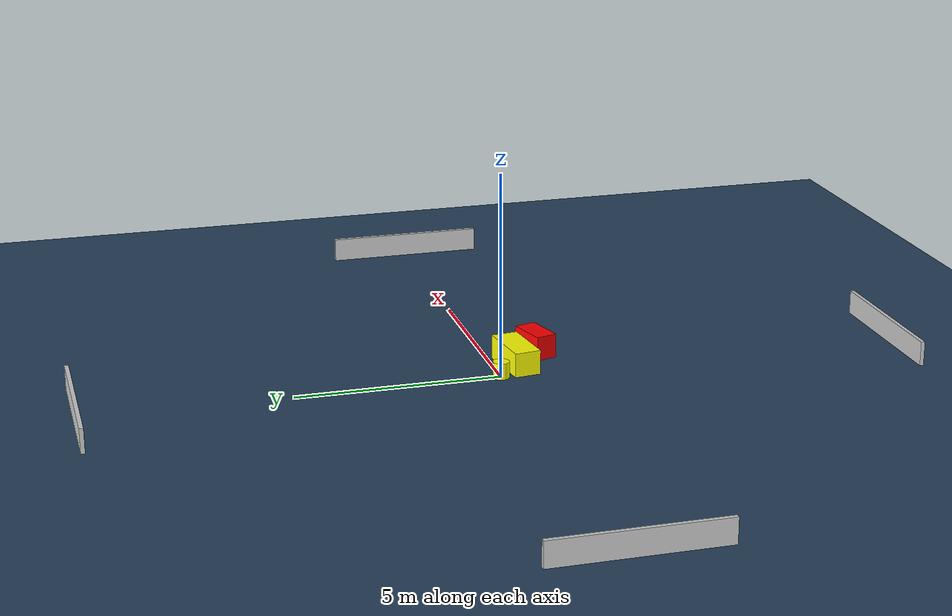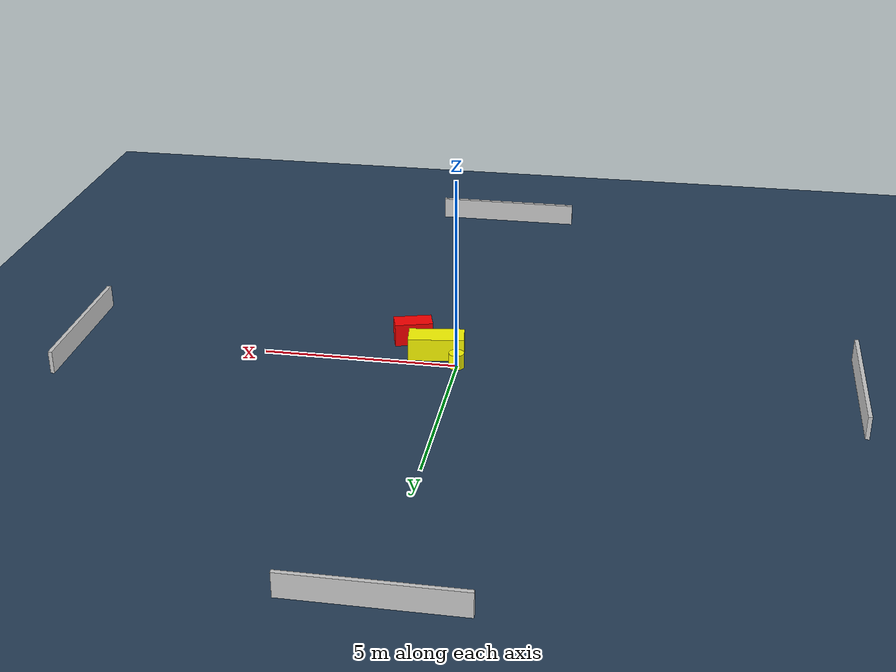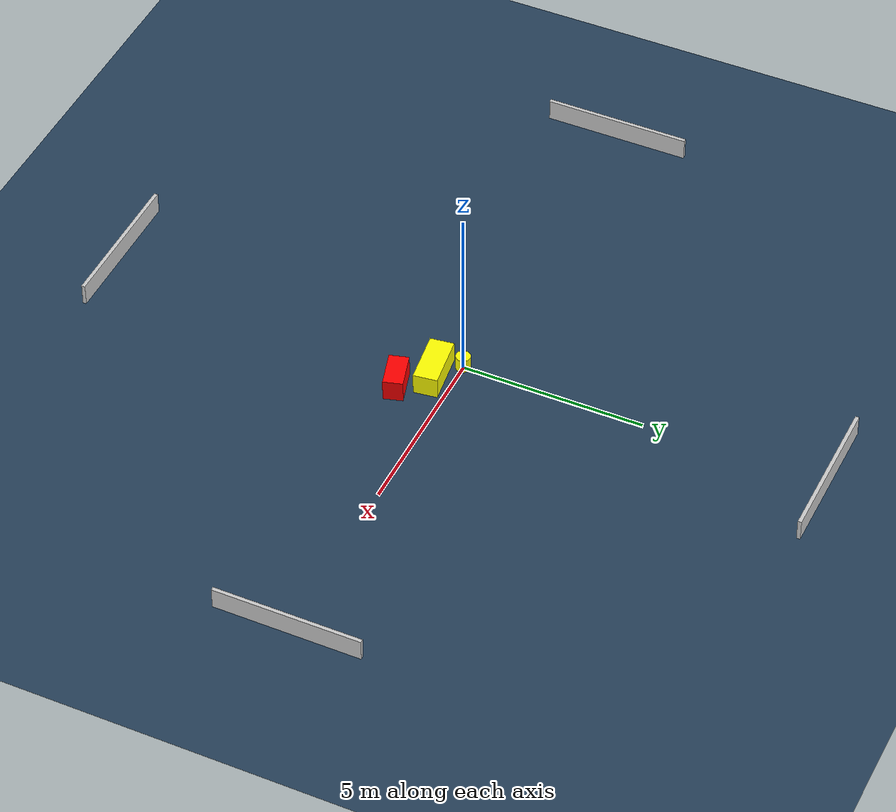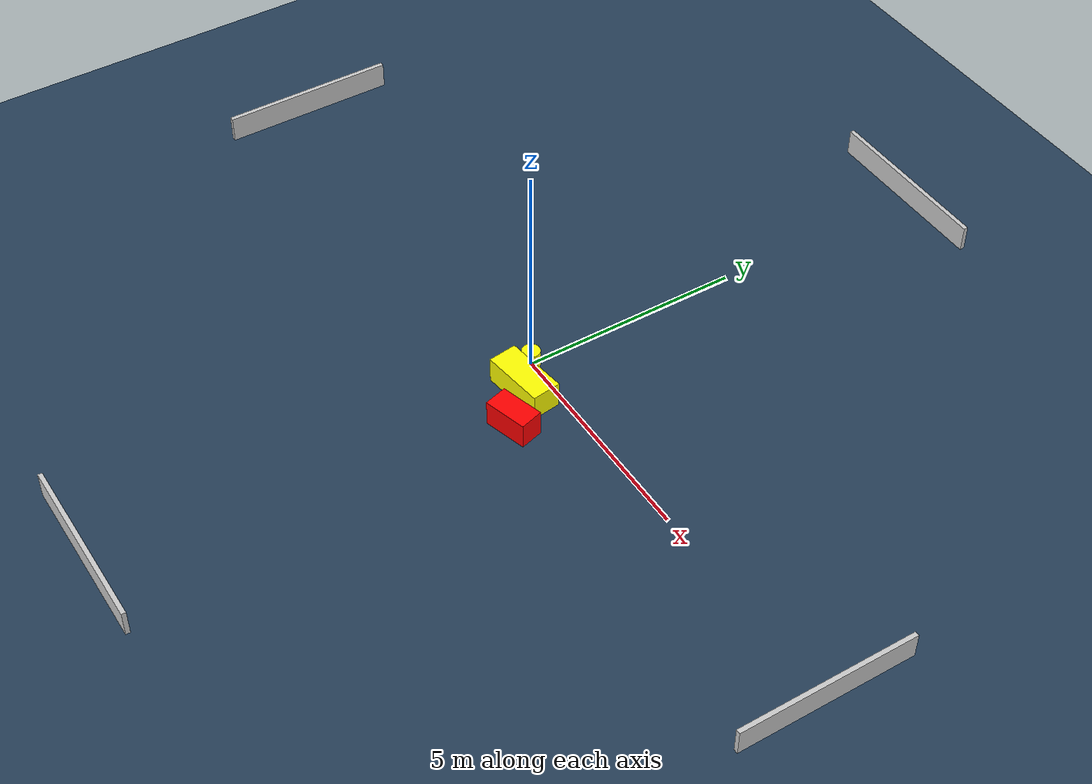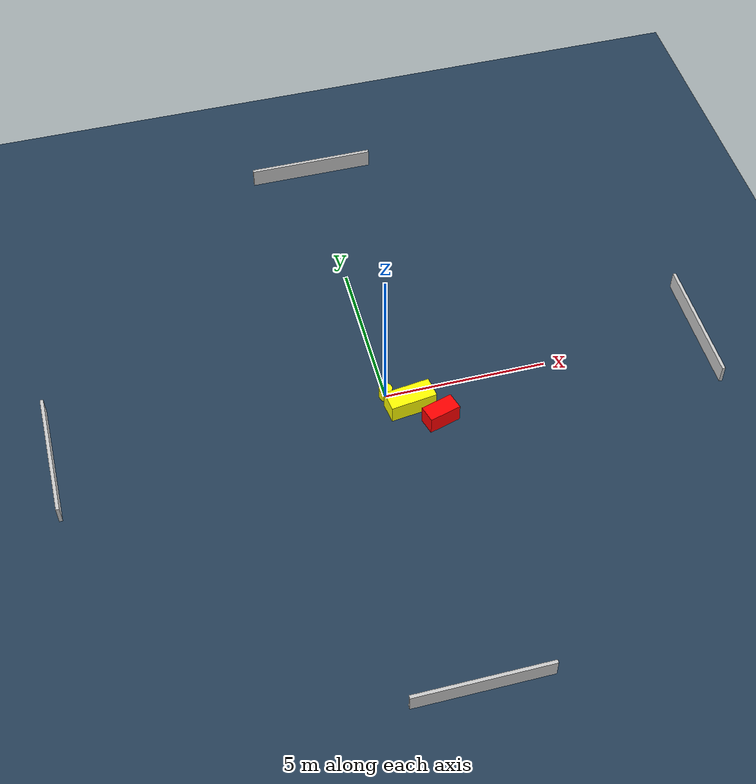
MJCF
<?xml version="1.0" ?>
<mujoco model="generated_environment">
  <option timestep="0.01" integrator="RK4" cone="elliptic"/>
  <default>
    <geom density="1"/>
  </default>
  <asset>
    <texture builtin="gradient" height="3072" name="skybox" rgb1="0.3 0.5 0.7" rgb2="0 0 0" type="skybox" width="512"/>
    <texture builtin="checker" height="300" name="groundplane" rgb1="0.2 0.3 0.4" rgb2="0.1 0.2 0.3" type="2d" width="300"/>
    <material name="groundplane" reflectance="0.2" texrepeat="5 5" texture="groundplane"/>
  </asset>
  <worldbody>
    <light dir="0 0 -1" directional="true" pos="0 0 1.5"/>
    <geom condim="3" friction="0.5 0.005 0.001" material="groundplane" name="floor" pos="0 0 0" size="0 0 0.05" type="plane"/>
    <body name="walls">
      <geom name="wall_1" condim="4" pos="-10.0 0.0 0.3" rgba="0.800000011920929 0.800000011920929 0.800000011920929 1.0" size="0.05 2.0 0.3" type="box"/>
      <geom name="wall_2" condim="4" pos="10.0 0.0 0.3" rgba="0.800000011920929 0.800000011920929 0.800000011920929 1.0" size="0.05 2.0 0.3" type="box"/>
      <geom name="wall_3" condim="4" pos="0.0 -10.0 0.3" rgba="0.800000011920929 0.800000011920929 0.800000011920929 1.0" size="2.0 0.05 0.3" type="box"/>
      <geom name="wall_4" condim="4" pos="0.0 10.0 0.3" rgba="0.800000011920929 0.800000011920929 0.800000011920929 1.0" size="2.0 0.05 0.3" type="box"/>
    </body>
    <body name="robot">
      <joint name="joint_x" type="slide" pos="0 0 0" axis="1 0 0"/>
      <joint name="joint_y" type="slide" pos="0 0 0" axis="0 1 0"/>
      <geom name="robot" type="cylinder" pos="0.0 0.0 0.2" size="0.2 0.2 0.0" mass="5.0" friction="1.0 0.005 0.0001" condim="4" rgba="1.0 1.0 0.0 1.0"/>
    </body>
    <body name="obstacle_1_movable">
      <geom name="obstacle_1_movable" condim="4" pos="0.6153757668185557 -0.5462038233682118 0.3" euler="0 0 97.48339397923438" friction="0.0 0.005 0.001" rgba="1.0 1.0 0.0 1.0" size="0.3253736046835225 0.7165527824223867 0.3" type="box" mass="0.1"/>
      <joint type="free"/>
    </body>
    <body name="obstacle_2_static">
      <geom name="obstacle_2_static" condim="4" pos="1.3565213631768434 -1.2609290462329468 0.3" euler="0 0 106.04764142404318" friction="0.0 0.005 0.001" rgba="1.0 0.0 0.0 1.0" size="0.26577622344511365 0.49682644882865157 0.3" type="box"/>
    </body>
  </worldbody>
  <actuator>
    <motor name="actuator_x" joint="joint_x" gear="1" ctrlrange="-1 1"/>
    <motor name="actuator_y" joint="joint_y" gear="1" ctrlrange="-1 1"/>
  </actuator>
</mujoco>
